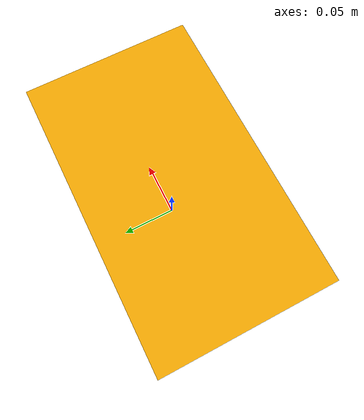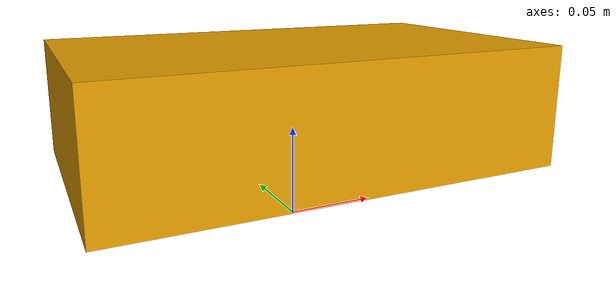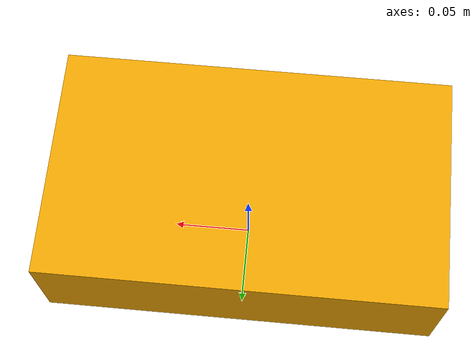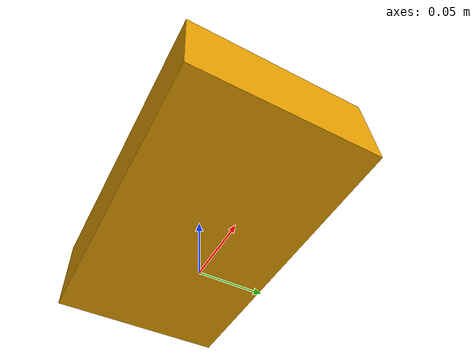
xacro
<?xml version="1.0"?>
<robot name="amr" xmlns:xacro="http://www.ros.org/wiki/xacro">
    <xacro:include filename="inertia_macros.xacro" />

    <!-- Robot Wheel Properties, all masses need to be weighted  -->

    <xacro:property name="wheelRadius" value="0.0325" />
    <xacro:property name="wheelWidth" value="0.026" />
    <xacro:property name="wheelMass" value="0.08" />
    <xacro:property name="wheelSeparation" value="0.167" />

    <!-- Robot Chassis Properties -->

    <xacro:property name="chassisLength" value="0.2405" />
    <xacro:property name="chassisWidth" value="0.143" />
    <xacro:property name="chassisHeight" value="0.065" />
    <xacro:property name="chassisMass" value="1.7" />

    <!-- Robot Caster Wheel Properties -->

    <xacro:property name="casterRadius" value="0.03" />
    <xacro:property name="casterMass" value="0.06" />

    <!-- Base Link configuration-->

    <link name="base_link">
        <visual>
            <origin xyz="0 0 ${wheelRadius + chassisHeight/2}" rpy="0 0 0"/>
            <geometry>
                <box size="${chassisLength} ${chassisWidth} ${chassisHeight}" />
            </geometry>
        </visual>
        <collision>
           <origin xyz="0 0 ${wheelRadius + chassisHeight/2}" rpy="0 0 0"/>
            <geometry>
                <box size="${chassisLength} ${chassisWidth} ${chassisHeight}" />
            </geometry>
        </collision>
        <inertial>
            <mass value="${chassisMass}" />
            <xacro:box_inertia m="${chassisMass}" x="${chassisLength}" y="${chassisWidth}"
                z="${chassisHeight}" />
        </inertial>
    </link>

</robot>

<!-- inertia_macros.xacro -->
<robot xmlns:xacro="http://www.ros.org/wiki/xacro">

    <xacro:macro name="box_inertia" params="m x y z">

        <inertia
            ixx="${m*(y*y+z*z)/12}"
            ixy="0"
            ixz="0"
            iyy="${m*(x*x+z*z)/12}"
            iyz="0"
            izz="${m*(x*x+y*y)/12}"
        />
    </xacro:macro>

    <xacro:macro name="cylinder_inertia" params="m r L">

        <inertia
            ixx="${m*(3*r*r+L*L)/12}"
            ixy="0"
            ixz="0"
            iyy="${m*(3*r*r+L*L)/12}"
            iyz="0"
            izz="${m*r*r/2}"
        />
    </xacro:macro>

    <xacro:macro name="sphere_inertia" params="m r">

        <inertia
            ixx="${2*m*r*r/5}"
            ixy="0"
            ixz="0"
            iyy="${2*m*r*r/5}"
            iyz="0"
            izz="${2*m*r*r/5}"
        />
    </xacro:macro>

</robot>
